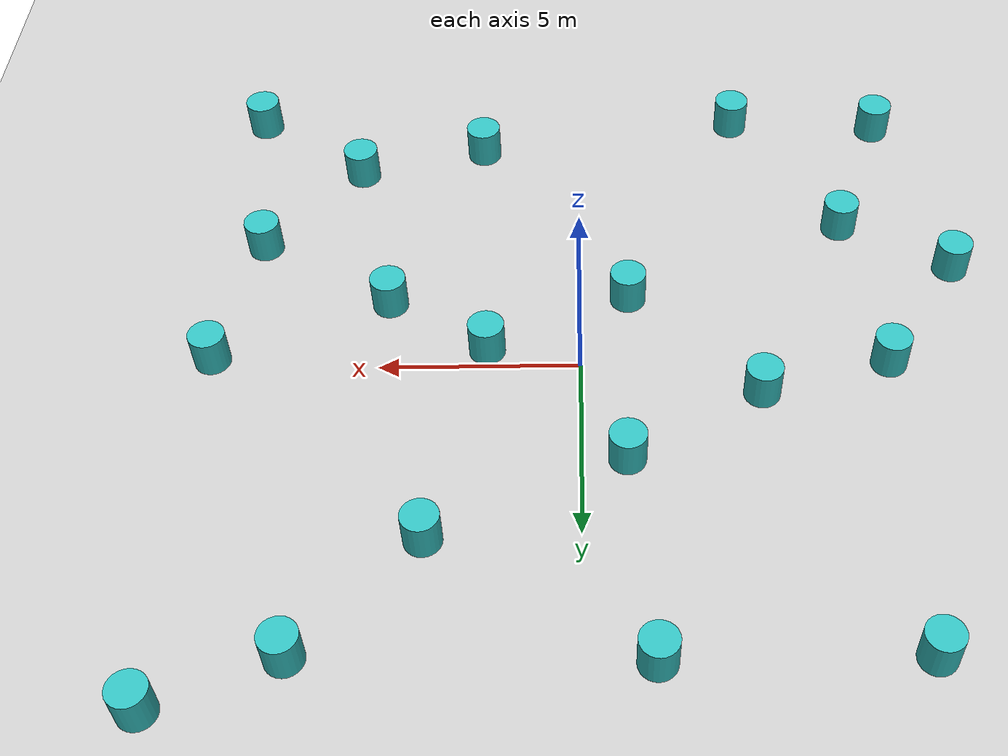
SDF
<sdf version="1.6">
 <world name="default">
  <light name="sun" type="directional">
   <pose>0 0 10 0 -0 0</pose>
   <diffuse>0.8 0.8 0.8 1</diffuse>
   <specular>0.2 0.2 0.2 1</specular>
   <attenuation>
    <range>1000</range>
    <constant>0.9</constant>
    <linear>0.01</linear>
    <quadratic>0.001</quadratic>
   </attenuation>
   <direction>-0.5 0.1 -0.9</direction>
  </light>
  <model name="ground_plane">
   <static>1</static>
   <link name="link">
    <collision name="collision">
     <geometry><plane><normal>0 0 1</normal><size>20 20</size></plane></geometry>
     <surface><friction><ode><mu>100</mu><mu2>50</mu2></ode></friction></surface>
    </collision>
    <visual name="visual">
     <cast_shadows>0</cast_shadows>
     <geometry><plane><normal>0 0 1</normal><size>20 20</size></plane></geometry>
     <material>
      <script><uri>file://media/materials/scripts/gazebo.material</uri><name>Gazebo/Grey</name></script>
     </material>
    </visual>
   </link>
  </model>
  <gravity>0 0 -9.8</gravity>
  <magnetic_field>6e-06 2.3e-05 -4.2e-05</magnetic_field>
  <atmosphere type="adiabatic"/>
  <physics name="default_physics" default="0" type="ode">
   <max_step_size>0.001</max_step_size>
   <real_time_factor>1</real_time_factor>
   <real_time_update_rate>1000</real_time_update_rate>
  </physics>
  <scene><ambient>0.4 0.4 0.4 1</ambient><background>0.7 0.7 0.7 1</background><shadows>1</shadows></scene>
  <spherical_coordinates>
   <surface_model>EARTH_WGS84</surface_model>
   <latitude_deg>0</latitude_deg>
   <longitude_deg>0</longitude_deg>
   <elevation>0</elevation>
   <heading_deg>0</heading_deg>
  </spherical_coordinates>
  <model name="unit_cylinder">
   <pose>6.2945 8.1158 0.499994 -3e-06 -1e-06 -0</pose>
   <link name="link">
    <inertial>
     <mass>1</mass>
     <inertia><ixx>0.145833</ixx><ixy>0</ixy><ixz>0</ixz><iyy>0.145833</iyy><iyz>0</iyz><izz>0.125</izz></inertia>
    </inertial>
    <collision name="collision">
     <geometry><cylinder><radius>0.455</radius><length>1</length></cylinder></geometry>
    </collision>
    <visual name="visual">
     <geometry><cylinder><radius>0.455</radius><length>1</length></cylinder></geometry>
     <material>
      <script><name>Gazebo/Turquoise</name><uri>file://media/materials/scripts/gazebo.material</uri></script>
     </material>
    </visual>
   </link>
  </model>
  <model name="unit_cylinder_0">
   <pose>-7.4603 8.2675 0.499997 2e-06 1e-06 0</pose>
   <link name="link">
    <inertial>
     <mass>1</mass>
     <inertia><ixx>0.145833</ixx><ixy>0</ixy><ixz>0</ixz><iyy>0.145833</iyy><iyz>0</iyz><izz>0.125</izz></inertia>
    </inertial>
    <collision name="collision">
     <geometry><cylinder><radius>0.455</radius><length>1</length></cylinder></geometry>
    </collision>
    <visual name="visual">
     <geometry><cylinder><radius>0.455</radius><length>1</length></cylinder></geometry>
     <material>
      <script><name>Gazebo/Turquoise</name><uri>file://media/materials/scripts/gazebo.material</uri></script>
     </material>
    </visual>
   </link>
  </model>
  <model name="unit_cylinder_1">
   <pose>2.6472 -8.0492 0.499994 -3e-06 -1e-06 -0</pose>
   <link name="link">
    <inertial>
     <mass>1</mass>
     <inertia><ixx>0.145833</ixx><ixy>0</ixy><ixz>0</ixz><iyy>0.145833</iyy><iyz>0</iyz><izz>0.125</izz></inertia>
    </inertial>
    <collision name="collision">
     <geometry><cylinder><radius>0.455</radius><length>1</length></cylinder></geometry>
    </collision>
    <visual name="visual">
     <geometry><cylinder><radius>0.455</radius><length>1</length></cylinder></geometry>
     <material>
      <script><name>Gazebo/Turquoise</name><uri>file://media/materials/scripts/gazebo.material</uri></script>
     </material>
    </visual>
   </link>
  </model>
  <model name="unit_cylinder_2">
   <pose>-4.4295 0.953108 0.499994 -3e-06 -1e-06 -0.001142</pose>
   <link name="link">
    <inertial>
     <mass>1</mass>
     <inertia><ixx>0.145833</ixx><ixy>0</ixy><ixz>0</ixz><iyy>0.145833</iyy><iyz>0</iyz><izz>0.125</izz></inertia>
    </inertial>
    <collision name="collision">
     <geometry><cylinder><radius>0.455</radius><length>1</length></cylinder></geometry>
    </collision>
    <visual name="visual">
     <geometry><cylinder><radius>0.455</radius><length>1</length></cylinder></geometry>
     <material>
      <script><name>Gazebo/Turquoise</name><uri>file://media/materials/scripts/gazebo.material</uri></script>
     </material>
    </visual>
   </link>
  </model>
  <model name="unit_cylinder_3">
   <pose>9.1501 9.2978 0.499993 -3e-06 -1e-06 -0</pose>
   <link name="link">
    <inertial>
     <mass>1</mass>
     <inertia><ixx>0.145833</ixx><ixy>0</ixy><ixz>0</ixz><iyy>0.145833</iyy><iyz>0</iyz><izz>0.125</izz></inertia>
    </inertial>
    <collision name="collision">
     <geometry><cylinder><radius>0.455</radius><length>1</length></cylinder></geometry>
    </collision>
    <visual name="visual">
     <geometry><cylinder><radius>0.455</radius><length>1</length></cylinder></geometry>
     <material>
      <script><name>Gazebo/Turquoise</name><uri>file://media/materials/scripts/gazebo.material</uri></script>
     </material>
    </visual>
   </link>
  </model>
  <model name="unit_cylinder_4">
   <pose>9.1433 -0.292503 0.499996 3e-06 1e-06 -0</pose>
   <link name="link">
    <inertial>
     <mass>1</mass>
     <inertia><ixx>0.145833</ixx><ixy>0</ixy><ixz>0</ixz><iyy>0.145833</iyy><iyz>0</iyz><izz>0.125</izz></inertia>
    </inertial>
    <collision name="collision">
     <geometry><cylinder><radius>0.455</radius><length>1</length></cylinder></geometry>
    </collision>
    <visual name="visual">
     <geometry><cylinder><radius>0.455</radius><length>1</length></cylinder></geometry>
     <material>
      <script><name>Gazebo/Turquoise</name><uri>file://media/materials/scripts/gazebo.material</uri></script>
     </material>
    </visual>
   </link>
  </model>
  <model name="unit_cylinder_5">
   <pose>6.0056 -7.1623 0.499994 -3e-06 -2e-06 0</pose>
   <link name="link">
    <inertial>
     <mass>1</mass>
     <inertia><ixx>0.145833</ixx><ixy>0</ixy><ixz>0</ixz><iyy>0.145833</iyy><iyz>0</iyz><izz>0.125</izz></inertia>
    </inertial>
    <collision name="collision">
     <geometry><cylinder><radius>0.455</radius><length>1</length></cylinder></geometry>
    </collision>
    <visual name="visual">
     <geometry><cylinder><radius>0.455</radius><length>1</length></cylinder></geometry>
     <material>
      <script><name>Gazebo/Turquoise</name><uri>file://media/materials/scripts/gazebo.material</uri></script>
     </material>
    </visual>
   </link>
  </model>
  <model name="unit_cylinder_6">
   <pose>-1.5648 8.3147 0.499997 3e-06 1e-06 -0</pose>
   <link name="link">
    <inertial>
     <mass>1</mass>
     <inertia><ixx>0.145833</ixx><ixy>0</ixy><ixz>0</ixz><iyy>0.145833</iyy><iyz>0</iyz><izz>0.125</izz></inertia>
    </inertial>
    <collision name="collision">
     <geometry><cylinder><radius>0.455</radius><length>1</length></cylinder></geometry>
    </collision>
    <visual name="visual">
     <geometry><cylinder><radius>0.455</radius><length>1</length></cylinder></geometry>
     <material>
      <script><name>Gazebo/Turquoise</name><uri>file://media/materials/scripts/gazebo.material</uri></script>
     </material>
    </visual>
   </link>
  </model>
  <model name="unit_cylinder_7">
   <pose>3.5747 5.1548 0.499994 -4e-06 -3e-06 -0</pose>
   <link name="link">
    <inertial>
     <mass>1</mass>
     <inertia><ixx>0.145833</ixx><ixy>0</ixy><ixz>0</ixz><iyy>0.145833</iyy><iyz>0</iyz><izz>0.125</izz></inertia>
    </inertial>
    <collision name="collision">
     <geometry><cylinder><radius>0.455</radius><length>1</length></cylinder></geometry>
    </collision>
    <visual name="visual">
     <geometry><cylinder><radius>0.455</radius><length>1</length></cylinder></geometry>
     <material>
      <script><name>Gazebo/Turquoise</name><uri>file://media/materials/scripts/gazebo.material</uri></script>
     </material>
    </visual>
   </link>
  </model>
  <model name="unit_cylinder_8">
   <pose>4.8626 -2.1555 0.499997 3e-06 1e-06 -0</pose>
   <link name="link">
    <inertial>
     <mass>1</mass>
     <inertia><ixx>0.145833</ixx><ixy>0</ixy><ixz>0</ixz><iyy>0.145833</iyy><iyz>0</iyz><izz>0.125</izz></inertia>
    </inertial>
    <collision name="collision">
     <geometry><cylinder><radius>0.455</radius><length>1</length></cylinder></geometry>
    </collision>
    <visual name="visual">
     <geometry><cylinder><radius>0.455</radius><length>1</length></cylinder></geometry>
     <material>
      <script><name>Gazebo/Turquoise</name><uri>file://media/materials/scripts/gazebo.material</uri></script>
     </material>
    </visual>
   </link>
  </model>
  <model name="unit_cylinder_9">
   <pose>-4.40774 -9.1757 0.499994 -4e-06 -4e-06 -0.025288</pose>
   <link name="link">
    <inertial>
     <mass>1</mass>
     <inertia><ixx>0.145833</ixx><ixy>0</ixy><ixz>0</ixz><iyy>0.145833</iyy><iyz>0</iyz><izz>0.125</izz></inertia>
    </inertial>
    <collision name="collision">
     <geometry><cylinder><radius>0.455</radius><length>1</length></cylinder></geometry>
    </collision>
    <visual name="visual">
     <geometry><cylinder><radius>0.455</radius><length>1</length></cylinder></geometry>
     <material>
      <script><name>Gazebo/Turquoise</name><uri>file://media/materials/scripts/gazebo.material</uri></script>
     </material>
    </visual>
   </link>
  </model>
  <model name="unit_cylinder_10">
   <pose>9.0044 -9.3111 0.499997 3e-06 1e-06 -0</pose>
   <link name="link">
    <inertial>
     <mass>1</mass>
     <inertia><ixx>0.145833</ixx><ixy>0</ixy><ixz>0</ixz><iyy>0.145833</iyy><iyz>0</iyz><izz>0.125</izz></inertia>
    </inertial>
    <collision name="collision">
     <geometry><cylinder><radius>0.455</radius><length>1</length></cylinder></geometry>
    </collision>
    <visual name="visual">
     <geometry><cylinder><radius>0.455</radius><length>1</length></cylinder></geometry>
     <material>
      <script><name>Gazebo/Turquoise</name><uri>file://media/materials/scripts/gazebo.material</uri></script>
     </material>
    </visual>
   </link>
  </model>
  <model name="unit_cylinder_11">
   <pose>-1.24246 -2.26908 0.499994 -3e-06 -2e-06 -0.000325</pose>
   <link name="link">
    <inertial>
     <mass>1</mass>
     <inertia><ixx>0.145833</ixx><ixy>0</ixy><ixz>0</ixz><iyy>0.145833</iyy><iyz>0</iyz><izz>0.125</izz></inertia>
    </inertial>
    <collision name="collision">
     <geometry><cylinder><radius>0.455</radius><length>1</length></cylinder></geometry>
    </collision>
    <visual name="visual">
     <geometry><cylinder><radius>0.455</radius><length>1</length></cylinder></geometry>
     <material>
      <script><name>Gazebo/Turquoise</name><uri>file://media/materials/scripts/gazebo.material</uri></script>
     </material>
    </visual>
   </link>
  </model>
  <model name="unit_cylinder_12">
   <pose>-1.0883 2.9263 0.499997 3e-06 2e-06 0</pose>
   <link name="link">
    <inertial>
     <mass>1</mass>
     <inertia><ixx>0.145833</ixx><ixy>0</ixy><ixz>0</ixz><iyy>0.145833</iyy><iyz>0</iyz><izz>0.125</izz></inertia>
    </inertial>
    <collision name="collision">
     <geometry><cylinder><radius>0.455</radius><length>1</length></cylinder></geometry>
    </collision>
    <visual name="visual">
     <geometry><cylinder><radius>0.455</radius><length>1</length></cylinder></geometry>
     <material>
      <script><name>Gazebo/Turquoise</name><uri>file://media/materials/scripts/gazebo.material</uri></script>
     </material>
    </visual>
   </link>
  </model>
  <model name="unit_cylinder_13">
   <pose>-7.67036 0.02082 0.499991 -0 -0 -0.000955</pose>
   <link name="link">
    <inertial>
     <mass>1</mass>
     <inertia><ixx>0.145833</ixx><ixy>0</ixy><ixz>0</ixz><iyy>0.145833</iyy><iyz>0</iyz><izz>0.125</izz></inertia>
    </inertial>
    <collision name="collision">
     <geometry><cylinder><radius>0.455</radius><length>1</length></cylinder></geometry>
    </collision>
    <visual name="visual">
     <geometry><cylinder><radius>0.455</radius><length>1</length></cylinder></geometry>
     <material>
      <script><name>Gazebo/Turquoise</name><uri>file://media/materials/scripts/gazebo.material</uri></script>
     </material>
    </visual>
   </link>
  </model>
  <model name="unit_cylinder_14">
   <pose>-7.0141 -4.8498 0.499998 3e-06 -3e-06 0</pose>
   <link name="link">
    <inertial>
     <mass>1</mass>
     <inertia><ixx>0.145833</ixx><ixy>0</ixy><ixz>0</ixz><iyy>0.145833</iyy><iyz>0</iyz><izz>0.125</izz></inertia>
    </inertial>
    <collision name="collision">
     <geometry><cylinder><radius>0.455</radius><length>1</length></cylinder></geometry>
    </collision>
    <visual name="visual">
     <geometry><cylinder><radius>0.455</radius><length>1</length></cylinder></geometry>
     <material>
      <script><name>Gazebo/Turquoise</name><uri>file://media/materials/scripts/gazebo.material</uri></script>
     </material>
    </visual>
   </link>
  </model>
  <model name="unit_cylinder_15">
   <pose>2.3209 -0.534196 0.499993 -4e-06 -2e-06 -0</pose>
   <link name="link">
    <inertial>
     <mass>1</mass>
     <inertia><ixx>0.145833</ixx><ixy>0</ixy><ixz>0</ixz><iyy>0.145833</iyy><iyz>0</iyz><izz>0.125</izz></inertia>
    </inertial>
    <collision name="collision">
     <geometry><cylinder><radius>0.455</radius><length>1</length></cylinder></geometry>
    </collision>
    <visual name="visual">
     <geometry><cylinder><radius>0.455</radius><length>1</length></cylinder></geometry>
     <material>
      <script><name>Gazebo/Turquoise</name><uri>file://media/materials/scripts/gazebo.material</uri></script>
     </material>
    </visual>
   </link>
  </model>
  <model name="unit_cylinder_16">
   <pose>8.3439 -4.2832 0.499997 4e-06 3e-06 -0</pose>
   <link name="link">
    <inertial>
     <mass>1</mass>
     <inertia><ixx>0.145833</ixx><ixy>0</ixy><ixz>0</ixz><iyy>0.145833</iyy><iyz>0</iyz><izz>0.125</izz></inertia>
    </inertial>
    <collision name="collision">
     <geometry><cylinder><radius>0.455</radius><length>1</length></cylinder></geometry>
    </collision>
    <visual name="visual">
     <geometry><cylinder><radius>0.455</radius><length>1</length></cylinder></geometry>
     <material>
      <script><name>Gazebo/Turquoise</name><uri>file://media/materials/scripts/gazebo.material</uri></script>
     </material>
    </visual>
   </link>
  </model>
  <model name="unit_cylinder_17">
   <pose>-8.4829 -8.921 0.499993 -4e-06 -3e-06 -0</pose>
   <link name="link">
    <inertial>
     <mass>1</mass>
     <inertia><ixx>0.145833</ixx><ixy>0</ixy><ixz>0</ixz><iyy>0.145833</iyy><iyz>0</iyz><izz>0.125</izz></inertia>
    </inertial>
    <collision name="collision">
     <geometry><cylinder><radius>0.455</radius><length>1</length></cylinder></geometry>
    </collision>
    <visual name="visual">
     <geometry><cylinder><radius>0.455</radius><length>1</length></cylinder></geometry>
     <material>
      <script><name>Gazebo/Turquoise</name><uri>file://media/materials/scripts/gazebo.material</uri></script>
     </material>
    </visual>
   </link>
  </model>
  <model name="unit_cylinder_18">
   <pose>-9.762 -3.2575 0.499993 -4e-06 -4e-06 -0</pose>
   <link name="link">
    <inertial>
     <mass>1</mass>
     <inertia><ixx>0.145833</ixx><ixy>0</ixy><ixz>0</ixz><iyy>0.145833</iyy><iyz>0</iyz><izz>0.125</izz></inertia>
    </inertial>
    <collision name="collision">
     <geometry><cylinder><radius>0.455</radius><length>1</length></cylinder></geometry>
    </collision>
    <visual name="visual">
     <geometry><cylinder><radius>0.455</radius><length>1</length></cylinder></geometry>
     <material>
      <script><name>Gazebo/Turquoise</name><uri>file://media/materials/scripts/gazebo.material</uri></script>
     </material>
    </visual>
   </link>
  </model>
 </world>
</sdf>
